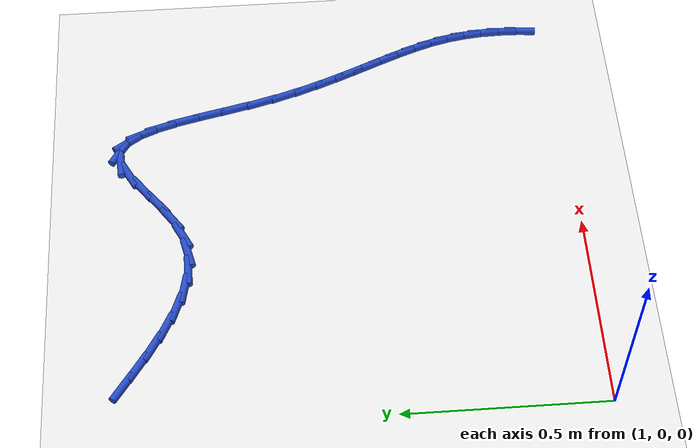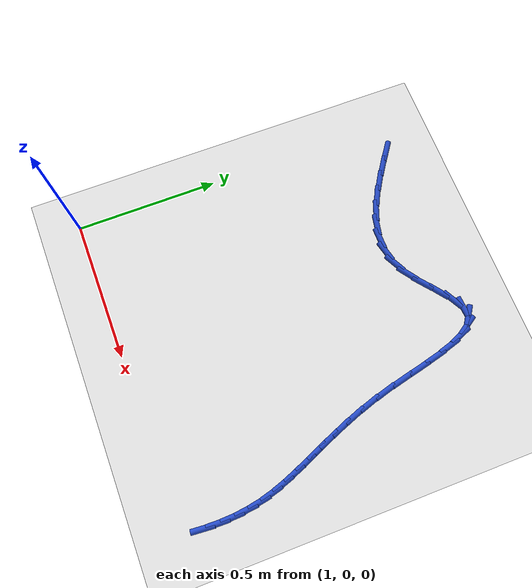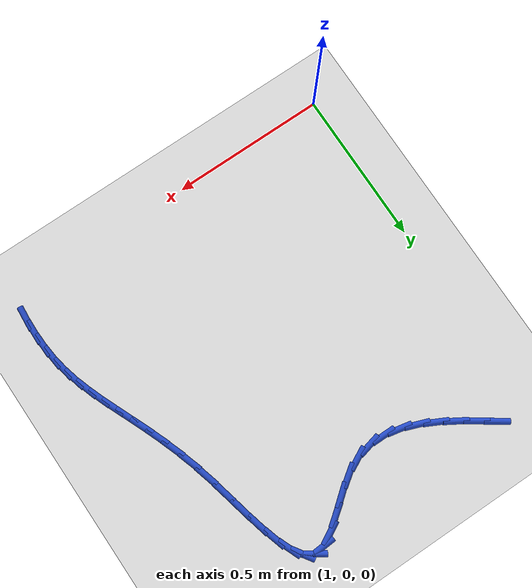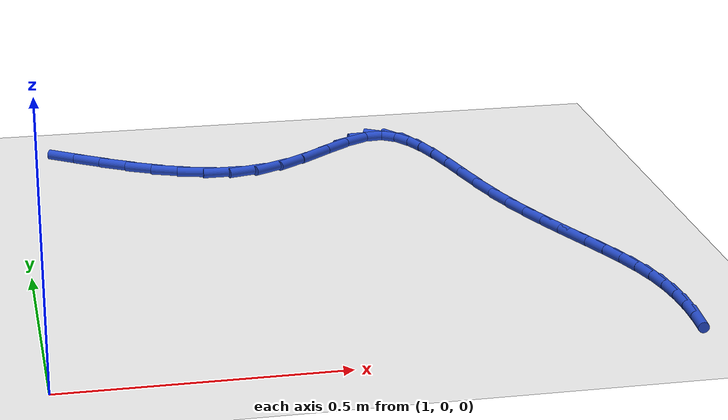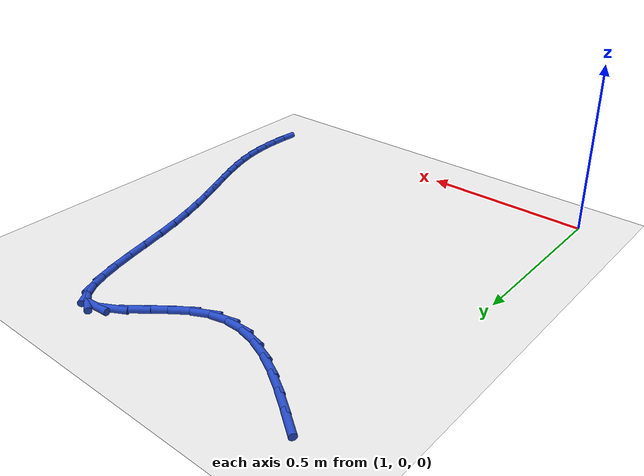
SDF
<sdf version="1.6">
 <world name="default">
  <model name="ground_plane">
   <static>1</static>
   <link name="link">
    <collision name="collision">
     <geometry><plane><normal>0 0 1</normal><size>100 100</size></plane></geometry>
     <surface><friction><ode><mu>100</mu><mu2>50</mu2></ode></friction></surface>
    </collision>
    <visual name="visual">
     <cast_shadows>0</cast_shadows>
     <geometry><plane><normal>0 0 1</normal><size>100 100</size></plane></geometry>
     <material>
      <script><uri>file://media/materials/scripts/gazebo.material</uri><name>Gazebo/WhiteGlow</name></script>
     </material>
    </visual>
   </link>
  </model>
  <model name="line">
   <link name="link_35">
    <pose>1.1080972612671416 1.1328804398978645 0.01 0 1.57 -0.6093406849988908</pose>
    <collision name="collision">
     <geometry><cylinder><radius>0.01</radius><length>0.08</length></cylinder></geometry>
    </collision>
    <visual name="visual">
     <material>
      <script><name>Gazebo/Blue</name><uri>file://media/materials/scripts/gazebo.material</uri></script>
     </material>
     <geometry><cylinder><radius>0.01</radius><length>0.08</length></cylinder></geometry>
    </visual>
   </link>
   <link name="link_36">
    <pose>1.1587546044021553 1.0975247585912382 0.01 0 1.57 -0.5879904892880937</pose>
    <collision name="collision">
     <geometry><cylinder><radius>0.01</radius><length>0.08</length></cylinder></geometry>
    </collision>
    <visual name="visual">
     <material>
      <script><name>Gazebo/Blue</name><uri>file://media/materials/scripts/gazebo.material</uri></script>
     </material>
     <geometry><cylinder><radius>0.01</radius><length>0.08</length></cylinder></geometry>
    </visual>
   </link>
   <link name="link_37">
    <pose>1.209802975181454 1.0634934046613496 0.01 0 1.57 -0.5415102852055295</pose>
    <collision name="collision">
     <geometry><cylinder><radius>0.01</radius><length>0.08</length></cylinder></geometry>
    </collision>
    <visual name="visual">
     <material>
      <script><name>Gazebo/Blue</name><uri>file://media/materials/scripts/gazebo.material</uri></script>
     </material>
     <geometry><cylinder><radius>0.01</radius><length>0.08</length></cylinder></geometry>
    </visual>
   </link>
   <link name="link_38">
    <pose>1.2611409749881033 1.0326143966162873 0.01 0 1.57 -0.4657496203789692</pose>
    <collision name="collision">
     <geometry><cylinder><radius>0.01</radius><length>0.08</length></cylinder></geometry>
    </collision>
    <visual name="visual">
     <material>
      <script><name>Gazebo/Blue</name><uri>file://media/materials/scripts/gazebo.material</uri></script>
     </material>
     <geometry><cylinder><radius>0.01</radius><length>0.08</length></cylinder></geometry>
    </visual>
   </link>
   <link name="link_39">
    <pose>1.312667205205169 1.0067157529641375 0.01 0 1.57 -0.354267911805755</pose>
    <collision name="collision">
     <geometry><cylinder><radius>0.01</radius><length>0.08</length></cylinder></geometry>
    </collision>
    <visual name="visual">
     <material>
      <script><name>Gazebo/Blue</name><uri>file://media/materials/scripts/gazebo.material</uri></script>
     </material>
     <geometry><cylinder><radius>0.01</radius><length>0.08</length></cylinder></geometry>
    </visual>
   </link>
   <link name="link_40">
    <pose>1.364280267215717 0.9876254922129887 0.01 0 1.57 -0.1998943837817718</pose>
    <collision name="collision">
     <geometry><cylinder><radius>0.01</radius><length>0.08</length></cylinder></geometry>
    </collision>
    <visual name="visual">
     <material>
      <script><name>Gazebo/Blue</name><uri>file://media/materials/scripts/gazebo.material</uri></script>
     </material>
     <geometry><cylinder><radius>0.01</radius><length>0.08</length></cylinder></geometry>
    </visual>
   </link>
   <link name="link_41">
    <pose>1.415878762402814 0.9771716328709275 0.01 0 1.57 0.00020512929372362614</pose>
    <collision name="collision">
     <geometry><cylinder><radius>0.01</radius><length>0.08</length></cylinder></geometry>
    </collision>
    <visual name="visual">
     <material>
      <script><name>Gazebo/Blue</name><uri>file://media/materials/scripts/gazebo.material</uri></script>
     </material>
     <geometry><cylinder><radius>0.01</radius><length>0.08</length></cylinder></geometry>
    </visual>
   </link>
   <link name="link_42">
    <pose>1.4673612921495258 0.9771821934460416 0.01 0 1.57 0.235533162386888</pose>
    <collision name="collision">
     <geometry><cylinder><radius>0.01</radius><length>0.08</length></cylinder></geometry>
    </collision>
    <visual name="visual">
     <material>
      <script><name>Gazebo/Blue</name><uri>file://media/materials/scripts/gazebo.material</uri></script>
     </material>
     <geometry><cylinder><radius>0.01</radius><length>0.08</length></cylinder></geometry>
    </visual>
   </link>
   <link name="link_43">
    <pose>1.5186264578389173 0.9894851924464179 0.01 0 1.57 0.47116439461644616</pose>
    <collision name="collision">
     <geometry><cylinder><radius>0.01</radius><length>0.08</length></cylinder></geometry>
    </collision>
    <visual name="visual">
     <material>
      <script><name>Gazebo/Blue</name><uri>file://media/materials/scripts/gazebo.material</uri></script>
     </material>
     <geometry><cylinder><radius>0.01</radius><length>0.08</length></cylinder></geometry>
    </visual>
   </link>
   <link name="link_44">
    <pose>1.569516032798952 1.015409950415184 0.01 0 1.57 0.6207179666237673</pose>
    <collision name="collision">
     <geometry><cylinder><radius>0.01</radius><length>0.08</length></cylinder></geometry>
    </collision>
    <visual name="visual">
     <material>
      <script><name>Gazebo/Blue</name><uri>file://media/materials/scripts/gazebo.material</uri></script>
     </material>
     <geometry><cylinder><radius>0.01</radius><length>0.08</length></cylinder></geometry>
    </visual>
   </link>
   <link name="link_45">
    <pose>1.6192673910329116 1.0509818458076052 0.01 0 1.57 0.675440867677812</pose>
    <collision name="collision">
     <geometry><cylinder><radius>0.01</radius><length>0.08</length></cylinder></geometry>
    </collision>
    <visual name="visual">
     <material>
      <script><name>Gazebo/Blue</name><uri>file://media/materials/scripts/gazebo.material</uri></script>
     </material>
     <geometry><cylinder><radius>0.01</radius><length>0.08</length></cylinder></geometry>
    </visual>
   </link>
   <link name="link_46">
    <pose>1.666753109490665 1.0890249589203578 0.01 0 1.57 0.6468089882605459</pose>
    <collision name="collision">
     <geometry><cylinder><radius>0.01</radius><length>0.08</length></cylinder></geometry>
    </collision>
    <visual name="visual">
     <material>
      <script><name>Gazebo/Blue</name><uri>file://media/materials/scripts/gazebo.material</uri></script>
     </material>
     <geometry><cylinder><radius>0.01</radius><length>0.08</length></cylinder></geometry>
    </visual>
   </link>
   <link name="link_47">
    <pose>1.7108407209499121 1.1223191046183927 0.01 0 1.57 0.49443216344180696</pose>
    <collision name="collision">
     <geometry><cylinder><radius>0.01</radius><length>0.08</length></cylinder></geometry>
    </collision>
    <visual name="visual">
     <material>
      <script><name>Gazebo/Blue</name><uri>file://media/materials/scripts/gazebo.material</uri></script>
     </material>
     <geometry><cylinder><radius>0.01</radius><length>0.08</length></cylinder></geometry>
    </visual>
   </link>
   <link name="link_48">
    <pose>1.750397758188359 1.1436440977666649 0.01 0 1.57 0.06967872058787611</pose>
    <collision name="collision">
     <geometry><cylinder><radius>0.01</radius><length>0.08</length></cylinder></geometry>
    </collision>
    <visual name="visual">
     <material>
      <script><name>Gazebo/Blue</name><uri>file://media/materials/scripts/gazebo.material</uri></script>
     </material>
     <geometry><cylinder><radius>0.01</radius><length>0.08</length></cylinder></geometry>
    </visual>
   </link>
   <link name="link_49">
    <pose>1.7843390064456652 1.1460129153963379 0.01 0 1.57 -0.5753348081033857</pose>
    <collision name="collision">
     <geometry><cylinder><radius>0.01</radius><length>0.08</length></cylinder></geometry>
    </collision>
    <visual name="visual">
     <material>
      <script><name>Gazebo/Blue</name><uri>file://media/materials/scripts/gazebo.material</uri></script>
     </material>
     <geometry><cylinder><radius>0.01</radius><length>0.08</length></cylinder></geometry>
    </visual>
   </link>
   <link name="link_50">
    <pose>1.8126375712273077 1.1276607015006925 0.01 0 1.57 -0.9851932827144391</pose>
    <collision name="collision">
     <geometry><cylinder><radius>0.01</radius><length>0.08</length></cylinder></geometry>
    </collision>
    <visual name="visual">
     <material>
      <script><name>Gazebo/Blue</name><uri>file://media/materials/scripts/gazebo.material</uri></script>
     </material>
     <geometry><cylinder><radius>0.01</radius><length>0.08</length></cylinder></geometry>
    </visual>
   </link>
   <link name="link_51">
    <pose>1.8363092903695477 1.0919678500545753 0.01 0 1.57 -1.1845361011437634</pose>
    <collision name="collision">
     <geometry><cylinder><radius>0.01</radius><length>0.08</length></cylinder></geometry>
    </collision>
    <visual name="visual">
     <material>
      <script><name>Gazebo/Blue</name><uri>file://media/materials/scripts/gazebo.material</uri></script>
     </material>
     <geometry><cylinder><radius>0.01</radius><length>0.08</length></cylinder></geometry>
    </visual>
   </link>
   <link name="link_52">
    <pose>1.8564141363684141 1.0425325327411221 0.01 0 1.57 -1.2835939373152463</pose>
    <collision name="collision">
     <geometry><cylinder><radius>0.01</radius><length>0.08</length></cylinder></geometry>
    </collision>
    <visual name="visual">
     <material>
      <script><name>Gazebo/Blue</name><uri>file://media/materials/scripts/gazebo.material</uri></script>
     </material>
     <geometry><cylinder><radius>0.01</radius><length>0.08</length></cylinder></geometry>
    </visual>
   </link>
   <link name="link_53">
    <pose>1.8740120817199382 0.982952921243472 0.01 0 1.57 -1.3312394661057148</pose>
    <collision name="collision">
     <geometry><cylinder><radius>0.01</radius><length>0.08</length></cylinder></geometry>
    </collision>
    <visual name="visual">
     <material>
      <script><name>Gazebo/Blue</name><uri>file://media/materials/scripts/gazebo.material</uri></script>
     </material>
     <geometry><cylinder><radius>0.01</radius><length>0.08</length></cylinder></geometry>
    </visual>
   </link>
   <link name="link_54">
    <pose>1.890163098920149 0.9168271872447609 0.01 0 1.57 -1.346418266558759</pose>
    <collision name="collision">
     <geometry><cylinder><radius>0.01</radius><length>0.08</length></cylinder></geometry>
    </collision>
    <visual name="visual">
     <material>
      <script><name>Gazebo/Blue</name><uri>file://media/materials/scripts/gazebo.material</uri></script>
     </material>
     <geometry><cylinder><radius>0.01</radius><length>0.08</length></cylinder></geometry>
    </visual>
   </link>
   <link name="link_55">
    <pose>1.9059271604650778 0.8477535024281256 0.01 0 1.57 -1.3350378959349</pose>
    <collision name="collision">
     <geometry><cylinder><radius>0.01</radius><length>0.08</length></cylinder></geometry>
    </collision>
    <visual name="visual">
     <material>
      <script><name>Gazebo/Blue</name><uri>file://media/materials/scripts/gazebo.material</uri></script>
     </material>
     <geometry><cylinder><radius>0.01</radius><length>0.08</length></cylinder></geometry>
    </visual>
   </link>
   <link name="link_56">
    <pose>1.9223642388507542 0.7793300384767047 0.01 0 1.57 -1.2976901745498084</pose>
    <collision name="collision">
     <geometry><cylinder><radius>0.01</radius><length>0.08</length></cylinder></geometry>
    </collision>
    <visual name="visual">
     <material>
      <script><name>Gazebo/Blue</name><uri>file://media/materials/scripts/gazebo.material</uri></script>
     </material>
     <geometry><cylinder><radius>0.01</radius><length>0.08</length></cylinder></geometry>
    </visual>
   </link>
   <link name="link_57">
    <pose>1.9404218600993848 0.7148627304492015 0.01 0 1.57 -1.2535801301103584</pose>
    <collision name="collision">
     <geometry><cylinder><radius>0.01</radius><length>0.08</length></cylinder></geometry>
    </collision>
    <visual name="visual">
     <material>
      <script><name>Gazebo/Blue</name><uri>file://media/materials/scripts/gazebo.material</uri></script>
     </material>
     <geometry><cylinder><radius>0.01</radius><length>0.08</length></cylinder></geometry>
    </visual>
   </link>
   <link name="link_58">
    <pose>1.9600519550308622 0.6550700656050981 0.01 0 1.57 -1.2163077514050005</pose>
    <collision name="collision">
     <geometry><cylinder><radius>0.01</radius><length>0.08</length></cylinder></geometry>
    </collision>
    <visual name="visual">
     <material>
      <script><name>Gazebo/Blue</name><uri>file://media/materials/scripts/gazebo.material</uri></script>
     </material>
     <geometry><cylinder><radius>0.01</radius><length>0.08</length></cylinder></geometry>
    </visual>
   </link>
   <link name="link_59">
    <pose>1.98068657834252 0.599319427536374 0.01 0 1.57 -1.1882250950180535</pose>
    <collision name="collision">
     <geometry><cylinder><radius>0.01</radius><length>0.08</length></cylinder></geometry>
    </collision>
    <visual name="visual">
     <material>
      <script><name>Gazebo/Blue</name><uri>file://media/materials/scripts/gazebo.material</uri></script>
     </material>
     <geometry><cylinder><radius>0.01</radius><length>0.08</length></cylinder></geometry>
    </visual>
   </link>
   <link name="link_60">
    <pose>2.0017532670872145 0.546966458949531 0.01 0 1.57 -1.171550976726147</pose>
    <collision name="collision">
     <geometry><cylinder><radius>0.01</radius><length>0.08</length></cylinder></geometry>
    </collision>
    <visual name="visual">
     <material>
      <script><name>Gazebo/Blue</name><uri>file://media/materials/scripts/gazebo.material</uri></script>
     </material>
     <geometry><cylinder><radius>0.01</radius><length>0.08</length></cylinder></geometry>
    </visual>
   </link>
   <link name="link_61">
    <pose>2.0226795583178045 0.4973668025510696 0.01 0 1.57 -1.168392835623943</pose>
    <collision name="collision">
     <geometry><cylinder><radius>0.01</radius><length>0.08</length></cylinder></geometry>
    </collision>
    <visual name="visual">
     <material>
      <script><name>Gazebo/Blue</name><uri>file://media/materials/scripts/gazebo.material</uri></script>
     </material>
     <geometry><cylinder><radius>0.01</radius><length>0.08</length></cylinder></geometry>
    </visual>
   </link>
   <link name="link_62">
    <pose>2.0428929890871457 0.44987610104749176 0.01 0 1.57 -1.180631827880012</pose>
    <collision name="collision">
     <geometry><cylinder><radius>0.01</radius><length>0.08</length></cylinder></geometry>
    </collision>
    <visual name="visual">
     <material>
      <script><name>Gazebo/Blue</name><uri>file://media/materials/scripts/gazebo.material</uri></script>
     </material>
     <geometry><cylinder><radius>0.01</radius><length>0.08</length></cylinder></geometry>
    </visual>
   </link>
   <link name="link_63">
    <pose>2.0618210964480967 0.403849997145298 0.01 0 1.57 -1.209736792305382</pose>
    <collision name="collision">
     <geometry><cylinder><radius>0.01</radius><length>0.08</length></cylinder></geometry>
    </collision>
    <visual name="visual">
     <material>
      <script><name>Gazebo/Blue</name><uri>file://media/materials/scripts/gazebo.material</uri></script>
     </material>
     <geometry><cylinder><radius>0.01</radius><length>0.08</length></cylinder></geometry>
    </visual>
   </link>
   <link name="link_64">
    <pose>2.0788914174535145 0.3586441335509904 0.01 0 1.57 -1.2564574136945228</pose>
    <collision name="collision">
     <geometry><cylinder><radius>0.01</radius><length>0.08</length></cylinder></geometry>
    </collision>
    <visual name="visual">
     <material>
      <script><name>Gazebo/Blue</name><uri>file://media/materials/scripts/gazebo.material</uri></script>
     </material>
     <geometry><cylinder><radius>0.01</radius><length>0.08</length></cylinder></geometry>
    </visual>
   </link>
   <link name="link_65">
    <pose>2.093531489156255 0.31361415297106937 0.01 0 1.57 -1.3203899601440998</pose>
    <collision name="collision">
     <geometry><cylinder><radius>0.01</radius><length>0.08</length></cylinder></geometry>
    </collision>
    <visual name="visual">
     <material>
      <script><name>Gazebo/Blue</name><uri>file://media/materials/scripts/gazebo.material</uri></script>
     </material>
     <geometry><cylinder><radius>0.01</radius><length>0.08</length></cylinder></geometry>
    </visual>
   </link>
   <link name="link_66">
    <pose>2.1051688486091784 0.2681156981120362 0.01 0 1.57 -1.398470611467378</pose>
    <collision name="collision">
     <geometry><cylinder><radius>0.01</radius><length>0.08</length></cylinder></geometry>
    </collision>
    <visual name="visual">
     <material>
      <script><name>Gazebo/Blue</name><uri>file://media/materials/scripts/gazebo.material</uri></script>
     </material>
     <geometry><cylinder><radius>0.01</radius><length>0.08</length></cylinder></geometry>
    </visual>
   </link>
   <link name="link_67">
    <pose>2.113275315817419 0.22154073248576012 0.01 0 1.57 -1.4756640407196244</pose>
    <collision name="collision">
     <geometry><cylinder><radius>0.01</radius><length>0.08</length></cylinder></geometry>
    </collision>
    <visual name="visual">
     <material>
      <script><name>Gazebo/Blue</name><uri>file://media/materials/scripts/gazebo.material</uri></script>
     </material>
     <geometry><cylinder><radius>0.01</radius><length>0.08</length></cylinder></geometry>
    </visual>
   </link>
   <link name="link_68">
    <pose>2.1178397856531674 0.1737053235682842 0.01 0 1.57 -1.5433357298941663</pose>
    <collision name="collision">
     <geometry><cylinder><radius>0.01</radius><length>0.08</length></cylinder></geometry>
    </collision>
    <visual name="visual">
     <material>
      <script><name>Gazebo/Blue</name><uri>file://media/materials/scripts/gazebo.material</uri></script>
     </material>
     <geometry><cylinder><radius>0.01</radius><length>0.08</length></cylinder></geometry>
    </visual>
   </link>
   <link name="link_69">
    <pose>2.1191858381598783 0.12470004706826322 0.01 0 1.57 1.5399921952936917</pose>
    <collision name="collision">
     <geometry><cylinder><radius>0.01</radius><length>0.08</length></cylinder></geometry>
    </collision>
    <visual name="visual">
     <material>
      <script><name>Gazebo/Blue</name><uri>file://media/materials/scripts/gazebo.material</uri></script>
     </material>
     <geometry><cylinder><radius>0.01</radius><length>0.08</length></cylinder></geometry>
    </visual>
   </link>
   <link name="link_70">
    <pose>2.1176426805745536 0.07462009410934049 0.01 0 1.57 1.4906081740658474</pose>
    <collision name="collision">
     <geometry><cylinder><radius>0.01</radius><length>0.08</length></cylinder></geometry>
    </collision>
    <visual name="visual">
     <material>
      <script><name>Gazebo/Blue</name><uri>file://media/materials/scripts/gazebo.material</uri></script>
     </material>
     <geometry><cylinder><radius>0.01</radius><length>0.08</length></cylinder></geometry>
    </visual>
   </link>
  </model>
 </world>
</sdf>
